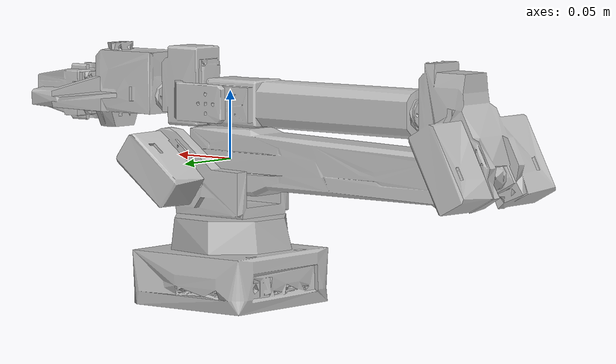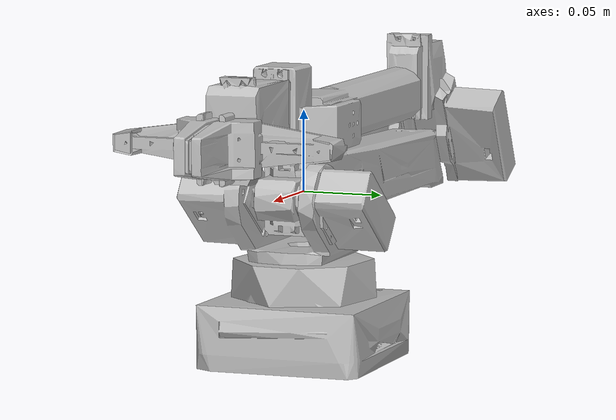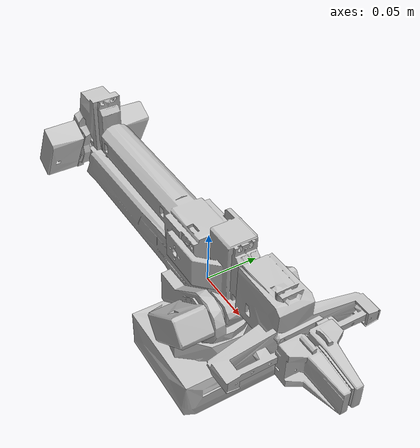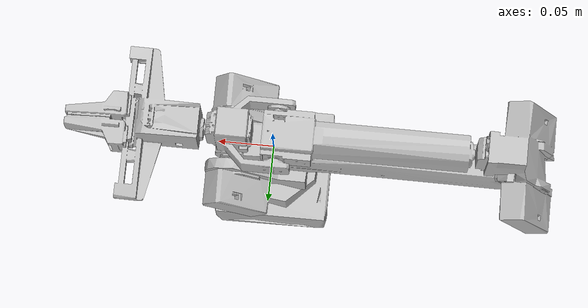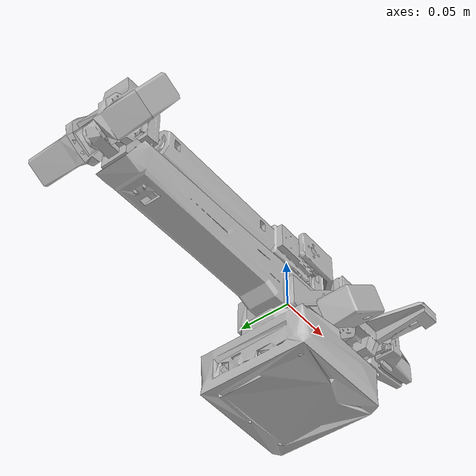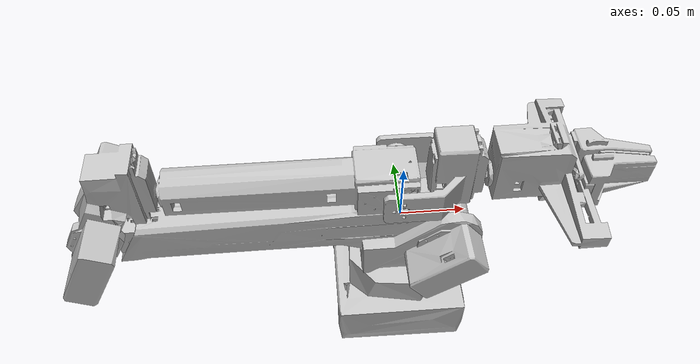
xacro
<?xml version="1.0" encoding="utf-8"?>
<robot
  name="zyarm_x1_plus"
  xmlns:xacro="http://www.ros.org/wiki/xacro">
  <!-- use_ros2_control=false: 只做模型显示或真机串口桥接 -->
  <!-- use_ros2_control=true:  展开 ros2_control 标签，供控制器链和 MoveIt mock/真机链使用 -->
  <xacro:arg name="use_ros2_control" default="true" />
  <xacro:arg name="use_real_hardware_interface" default="false" />
  <xacro:arg name="real_hardware_port" default="/dev/ttyUSB0" />
  <xacro:arg name="real_hardware_baud_rate" default="230400" />
  <xacro:arg name="real_hardware_read_timeout_ms" default="20" />
  <xacro:arg name="real_hardware_write_timeout_ms" default="20" />
  <xacro:arg name="real_hardware_activation_status_timeout_ms" default="1000" />
  <xacro:arg name="real_hardware_status_stale_warn_ms" default="100" />
  <xacro:arg name="real_hardware_status_stale_error_ms" default="1000" />
  <xacro:arg name="real_hardware_stale_log_period_ms" default="2000" />
  <xacro:arg name="real_hardware_reset_rts_dtr" default="false" />
  <xacro:arg name="real_hardware_reset_rts_dtr_quiet_ms" default="0" />
  <xacro:arg name="real_hardware_arm_hw_offsets_deg" default="0 -180 90 0 0 0" />
  <xacro:arg name="real_hardware_arm_hw_signs" default="1 1 1 1 1 1" />
  <xacro:arg name="real_hardware_claw_travel_m" default="0.034" />
  <xacro:arg name="real_hardware_claw_command_max" default="100" />
  <xacro:property name="use_ros2_control" value="$(arg use_ros2_control)" />
  <xacro:property name="use_real_hardware_interface" value="$(arg use_real_hardware_interface)" />
  <xacro:property name="arm_effort_limit" value="60.0" />
  <xacro:property name="gripper_effort_limit" value="160.0" />
  <xacro:property name="arm_base_velocity_limit" value="3.0" />
  <xacro:property name="arm_wrist_velocity_limit" value="4.0" />
  <xacro:property name="gripper_velocity_limit" value="0.12" />
  <!-- 下方主体仍基本保持 SolidWorks 导出结构，减少手工改动带来的模型漂移。 -->
  <link
    name="base_link">
    <inertial>
      <origin
        xyz="0.00091157 -0.00062627 -0.075733"
        rpy="0 0 0" />
      <mass
        value="0.26029" />
      <inertia
        ixx="0.00028525"
        ixy="-9.6012E-07"
        ixz="4.2857E-06"
        iyy="0.00026365"
        iyz="-1.2773E-06"
        izz="0.00047532" />
    </inertial>
    <visual>
      <origin
        xyz="0 0 0"
        rpy="0 0 0" />
      <geometry>
        <mesh
          filename="package://zyarm_description/meshes/x1_plus/base_link.STL" />
      </geometry>
      <material
        name="">
        <color
          rgba="0.75294 0.75294 0.75294 1" />
      </material>
    </visual>
    <collision>
      <origin
        xyz="0 0 0"
        rpy="0 0 0" />
      <geometry>
        <mesh
          filename="package://zyarm_description/meshes/x1_plus/base_link.STL" />
      </geometry>
    </collision>
  </link>
  <link
    name="link1">
    <inertial>
      <origin
        xyz="0.018353 -7.2605E-08 -0.013108"
        rpy="0 0 0" />
      <mass
        value="0.12888" />
      <inertia
        ixx="6.1663E-05"
        ixy="1.6594E-10"
        ixz="-1.5674E-05"
        iyy="8.0681E-05"
        iyz="-2.0696E-10"
        izz="8.7038E-05" />
    </inertial>
    <visual>
      <origin
        xyz="0 0 0"
        rpy="0 0 0" />
      <geometry>
        <mesh
          filename="package://zyarm_description/meshes/x1_plus/link1.STL" />
      </geometry>
      <material
        name="">
        <color
          rgba="0.75294 0.75294 0.75294 1" />
      </material>
    </visual>
    <collision>
      <origin
        xyz="0 0 0"
        rpy="0 0 0" />
      <geometry>
        <mesh
          filename="package://zyarm_description/meshes/x1_plus/link1.STL" />
      </geometry>
    </collision>
  </link>
  <joint
    name="joint0"
    type="revolute">
    <origin
      xyz="0 0 0"
      rpy="0 0 0" />
    <parent
      link="base_link" />
    <child
      link="link1" />
    <axis
      xyz="0 0 1" />
    <limit
      lower="-3.1415"
      upper="3.1415"
      effort="${arm_effort_limit}"
      velocity="${arm_base_velocity_limit}" />
  </joint>
  <link
    name="link2">
    <inertial>
      <origin
        xyz="0.1142 -0.0004833 4.5225E-07"
        rpy="0 0 0" />
      <mass
        value="0.18935" />
      <inertia
        ixx="4.7355E-05"
        ixy="1.0633E-05"
        ixz="3.8212E-10"
        iyy="0.00030578"
        iyz="6.2531E-13"
        izz="0.00031996" />
    </inertial>
    <visual>
      <origin
        xyz="0 0 0"
        rpy="0 0 0" />
      <geometry>
        <mesh
          filename="package://zyarm_description/meshes/x1_plus/link2.STL" />
      </geometry>
      <material
        name="">
        <color
          rgba="0.75294 0.75294 0.75294 1" />
      </material>
    </visual>
    <collision>
      <origin
        xyz="0 0 0"
        rpy="0 0 0" />
      <geometry>
        <mesh
          filename="package://zyarm_description/meshes/x1_plus/link2.STL" />
      </geometry>
    </collision>
  </link>
  <joint
    name="joint1"
    type="revolute">
    <origin
      xyz="0.037 0 0"
      rpy="-1.5708 -3.1416 0" />
    <parent
      link="link1" />
    <child
      link="link2" />
    <axis
      xyz="0 0 1" />
    <limit
      lower="-0.05"
      upper="3.17659"
      effort="${arm_effort_limit}"
      velocity="${arm_base_velocity_limit}" />
  </joint>
  <link
    name="link3">
    <inertial>
      <origin
        xyz="0.022342 0.013918 1.0102E-06"
        rpy="0 0 0" />
      <mass
        value="0.11556" />
      <inertia
        ixx="2.8305E-05"
        ixy="-1.401E-05"
        ixz="3.0938E-09"
        iyy="4.826E-05"
        iyz="1.2509E-09"
        izz="5.5117E-05" />
    </inertial>
    <visual>
      <origin
        xyz="0 0 0"
        rpy="0 0 0" />
      <geometry>
        <mesh
          filename="package://zyarm_description/meshes/x1_plus/link3.STL" />
      </geometry>
      <material
        name="">
        <color
          rgba="0.75294 0.75294 0.75294 1" />
      </material>
    </visual>
    <collision>
      <origin
        xyz="0 0 0"
        rpy="0 0 0" />
      <geometry>
        <mesh
          filename="package://zyarm_description/meshes/x1_plus/link3.STL" />
      </geometry>
    </collision>
  </link>
  <joint
    name="joint2"
    type="revolute">
    <origin
      xyz="0.27 0.0024 0"
      rpy="0 0 1.5708" />
    <parent
      link="link2" />
    <child
      link="link3" />
    <axis
      xyz="0 0 1" />
    <limit
      lower="-3.1766"
      upper="0.035"
      effort="${arm_effort_limit}"
      velocity="${arm_base_velocity_limit}" />
  </joint>
  <link
    name="link4">
    <inertial>
      <origin
        xyz="0.0024199 -3.8275E-05 0.079447"
        rpy="0 0 0" />
      <mass
        value="0.14836" />
      <inertia
        ixx="0.00028583"
        ixy="6.8285E-11"
        ixz="-1.9094E-08"
        iyy="0.00028709"
        iyz="8.7179E-07"
        izz="3.2835E-05" />
    </inertial>
    <visual>
      <origin
        xyz="0 0 0"
        rpy="0 0 0" />
      <geometry>
        <mesh
          filename="package://zyarm_description/meshes/x1_plus/link4.STL" />
      </geometry>
      <material
        name="">
        <color
          rgba="0.75294 0.75294 0.75294 1" />
      </material>
    </visual>
    <collision>
      <origin
        xyz="0 0 0"
        rpy="0 0 0" />
      <geometry>
        <mesh
          filename="package://zyarm_description/meshes/x1_plus/link4.STL" />
      </geometry>
    </collision>
  </link>
  <joint
    name="joint3"
    type="revolute">
    <origin
      xyz="0.039913 0.23 0"
      rpy="1.5708 0 0" />
    <parent
      link="link3" />
    <child
      link="link4" />
    <axis
      xyz="0 0 1" />
    <limit
      lower="-3.1416"
      upper="3.1416"
      effort="${arm_effort_limit}"
      velocity="${arm_wrist_velocity_limit}" />
  </joint>
  <link
    name="link5">
    <inertial>
      <origin
        xyz="0.0064731 0.033728 0.00014092"
        rpy="0 0 0" />
      <mass
        value="0.055716" />
      <inertia
        ixx="2.4408E-05"
        ixy="-1.842E-06"
        ixz="4.2863E-08"
        iyy="2.7394E-05"
        iyz="2.2654E-07"
        izz="2.3787E-05" />
    </inertial>
    <visual>
      <origin
        xyz="0 0 0"
        rpy="0 0 0" />
      <geometry>
        <mesh
          filename="package://zyarm_description/meshes/x1_plus/link5.STL" />
      </geometry>
      <material
        name="">
        <color
          rgba="0.75294 0.75294 0.75294 1" />
      </material>
    </visual>
    <collision>
      <origin
        xyz="0 0 0"
        rpy="0 0 0" />
      <geometry>
        <mesh
          filename="package://zyarm_description/meshes/x1_plus/link5.STL" />
      </geometry>
    </collision>
  </link>
  <joint
    name="joint4"
    type="revolute">
    <origin
      xyz="0 0 0"
      rpy="-1.5708 0 0" />
    <parent
      link="link4" />
    <child
      link="link5" />
    <axis
      xyz="0 0 1" />
    <limit
      lower="-1.745"
      upper="1.745"
      effort="${arm_effort_limit}"
      velocity="${arm_wrist_velocity_limit}" />
  </joint>
  <link
    name="link6">
    <inertial>
      <origin
        xyz="0.0056408 7.3513E-06 -0.10669"
        rpy="0 0 0" />
      <mass
        value="0.073553" />
      <inertia
        ixx="6.3575E-05"
        ixy="5.4249E-08"
        ixz="-2.3601E-06"
        iyy="2.4372E-05"
        iyz="5.4471E-09"
        izz="5.8246E-05" />
    </inertial>
    <visual>
      <origin
        xyz="0 0 0"
        rpy="0 0 0" />
      <geometry>
        <mesh
          filename="package://zyarm_description/meshes/x1_plus/link6.STL" />
      </geometry>
      <material
        name="">
        <color
          rgba="0.75294 0.75294 0.75294 1" />
      </material>
    </visual>
    <collision>
      <origin
        xyz="0 0 0"
        rpy="0 0 0" />
      <geometry>
        <mesh
          filename="package://zyarm_description/meshes/x1_plus/link6.STL" />
      </geometry>
    </collision>
  </link>
  <joint
    name="joint5"
    type="revolute">
    <origin
      xyz="0 0 0"
      rpy="1.5708 0 0" />
    <parent
      link="link5" />
    <child
      link="link6" />
    <axis
      xyz="0 0 1" />
    <limit
      lower="-3.1416"
      upper="3.1416"
      effort="${arm_effort_limit}"
      velocity="${arm_wrist_velocity_limit}" />
  </joint>
  <link
    name="claw1">
    <inertial>
      <origin
        xyz="0.008905 0.035115 5.5012E-05"
        rpy="0 0 0" />
      <mass
        value="0.020468" />
      <inertia
        ixx="5.8019E-06"
        ixy="-6.6705E-07"
        ixz="-8.8771E-09"
        iyy="2.5773E-06"
        iyz="-2.527E-08"
        izz="4.3825E-06" />
    </inertial>
    <visual>
      <origin
        xyz="0 0 0"
        rpy="0 0 0" />
      <geometry>
        <mesh
          filename="package://zyarm_description/meshes/x1_plus/claw1.STL" />
      </geometry>
      <material
        name="">
        <color
          rgba="0.75294 0.75294 0.75294 1" />
      </material>
    </visual>
    <collision>
      <origin
        xyz="0 0 0"
        rpy="0 0 0" />
      <geometry>
        <mesh
          filename="package://zyarm_description/meshes/x1_plus/claw1.STL" />
      </geometry>
    </collision>
  </link>
  <joint
    name="joint6"
    type="prismatic">
    <origin
      xyz="0 0 -0.18675"
      rpy="1.5708 0 -1.5708" />
    <parent
      link="link6" />
    <child
      link="claw1" />
    <axis
      xyz="1 0 0" />
    <limit
      lower="0"
      upper="0.034"
      effort="${gripper_effort_limit}"
      velocity="${gripper_velocity_limit}" />
  </joint>
  <link
    name="claw2">
    <inertial>
      <origin
        xyz="0.00890484946027597 0.0351149755081747 5.50123383620121E-05"
        rpy="0 0 0" />
      <mass
        value="0.0204682212662933" />
      <inertia
        ixx="5.80192930048784E-06"
        ixy="-6.67053810656157E-07"
        ixz="-8.87706332093647E-09"
        iyy="2.57726712753434E-06"
        iyz="-2.52702145099066E-08"
        izz="4.38251213169583E-06" />
    </inertial>
    <visual>
      <origin
        xyz="0 0 0"
        rpy="0 0 0" />
      <geometry>
        <mesh
          filename="package://zyarm_description/meshes/x1_plus/claw2.STL" />
      </geometry>
      <material
        name="">
        <color
          rgba="0.75294 0.75294 0.75294 1" />
      </material>
    </visual>
    <collision>
      <origin
        xyz="0 0 0"
        rpy="0 0 0" />
      <geometry>
        <mesh
          filename="package://zyarm_description/meshes/x1_plus/claw2.STL" />
      </geometry>
    </collision>
  </link>
  <joint
    name="joint7"
    type="prismatic">
    <origin
      xyz="0 0 -0.18675"
      rpy="1.5708 0 1.5708" />
    <parent
      link="link6" />
    <child
      link="claw2" />
    <axis
      xyz="1 0 0" />
    <mimic
      joint="joint6"
      multiplier="1.0"
      offset="0.0" />
    <limit
      lower="0"
      upper="0.034"
      effort="${gripper_effort_limit}"
      velocity="${gripper_velocity_limit}" />
  </joint>
  <link name="ee_link" />
  <joint name="ee_fixed_joint" type="fixed">
    <parent link="link6" />
    <child link="ee_link" />
    <origin xyz="0 0 -0.18675" rpy="1.5708 0 0" />
  </joint>
  <xacro:if value="${use_ros2_control}">
    <ros2_control name="ZyarmX1PlusSystem" type="system">
      <hardware>
        <xacro:if value="${use_real_hardware_interface}">
          <plugin>zyarm_hardware_interface/ZyArmSystemHardware</plugin>
          <param name="port">$(arg real_hardware_port)</param>
          <param name="baud_rate">$(arg real_hardware_baud_rate)</param>
          <param name="read_timeout_ms">$(arg real_hardware_read_timeout_ms)</param>
          <param name="write_timeout_ms">$(arg real_hardware_write_timeout_ms)</param>
          <param name="activation_status_timeout_ms">$(arg real_hardware_activation_status_timeout_ms)</param>
          <param name="status_stale_warn_ms">$(arg real_hardware_status_stale_warn_ms)</param>
          <param name="status_stale_error_ms">$(arg real_hardware_status_stale_error_ms)</param>
          <param name="stale_log_period_ms">$(arg real_hardware_stale_log_period_ms)</param>
          <param name="reset_rts_dtr">$(arg real_hardware_reset_rts_dtr)</param>
          <param name="reset_rts_dtr_quiet_ms">$(arg real_hardware_reset_rts_dtr_quiet_ms)</param>
          <param name="arm_hw_offsets_deg">$(arg real_hardware_arm_hw_offsets_deg)</param>
          <param name="arm_hw_signs">$(arg real_hardware_arm_hw_signs)</param>
          <param name="claw_travel_m">$(arg real_hardware_claw_travel_m)</param>
          <param name="claw_command_max">$(arg real_hardware_claw_command_max)</param>
        </xacro:if>
        <xacro:unless value="${use_real_hardware_interface}">
          <plugin>mock_components/GenericSystem</plugin>
        </xacro:unless>
      </hardware>
      <joint name="joint0">
        <command_interface name="position" />
        <state_interface name="position" />
        <xacro:unless value="${use_real_hardware_interface}">
          <state_interface name="velocity" />
        </xacro:unless>
      </joint>
      <joint name="joint1">
        <command_interface name="position" />
        <state_interface name="position" />
        <xacro:unless value="${use_real_hardware_interface}">
          <state_interface name="velocity" />
        </xacro:unless>
      </joint>
      <joint name="joint2">
        <command_interface name="position" />
        <state_interface name="position" />
        <xacro:unless value="${use_real_hardware_interface}">
          <state_interface name="velocity" />
        </xacro:unless>
      </joint>
      <joint name="joint3">
        <command_interface name="position" />
        <state_interface name="position" />
        <xacro:unless value="${use_real_hardware_interface}">
          <state_interface name="velocity" />
        </xacro:unless>
      </joint>
      <joint name="joint4">
        <command_interface name="position" />
        <state_interface name="position" />
        <xacro:unless value="${use_real_hardware_interface}">
          <state_interface name="velocity" />
        </xacro:unless>
      </joint>
      <joint name="joint5">
        <command_interface name="position" />
        <state_interface name="position" />
        <xacro:unless value="${use_real_hardware_interface}">
          <state_interface name="velocity" />
        </xacro:unless>
      </joint>
      <joint name="joint6">
        <command_interface name="position" />
        <state_interface name="position" />
        <xacro:unless value="${use_real_hardware_interface}">
          <state_interface name="velocity" />
        </xacro:unless>
      </joint>
    </ros2_control>
  </xacro:if>
</robot>
